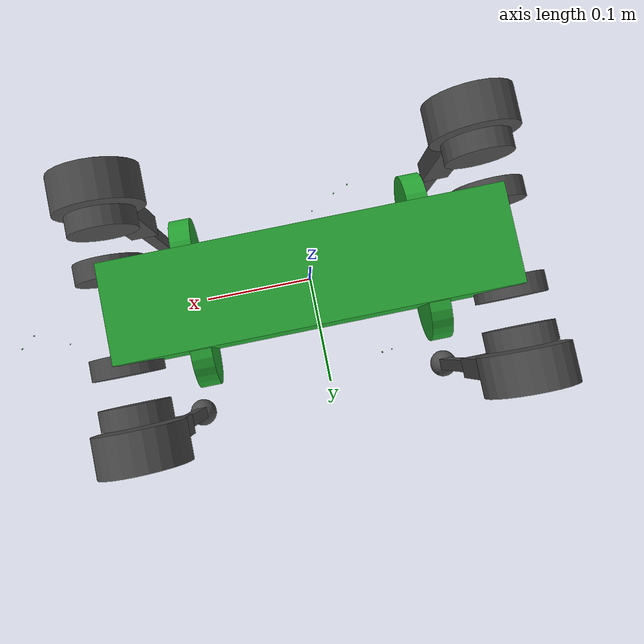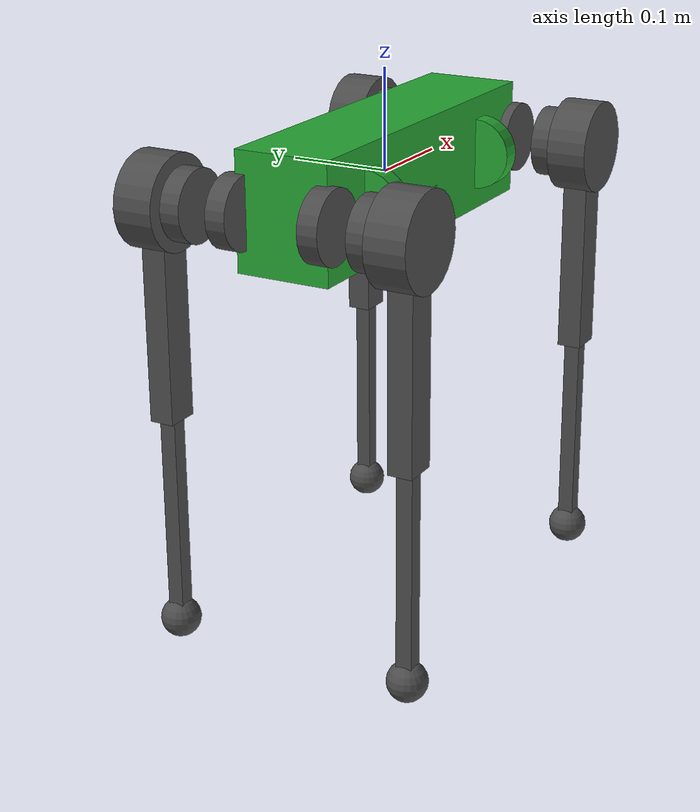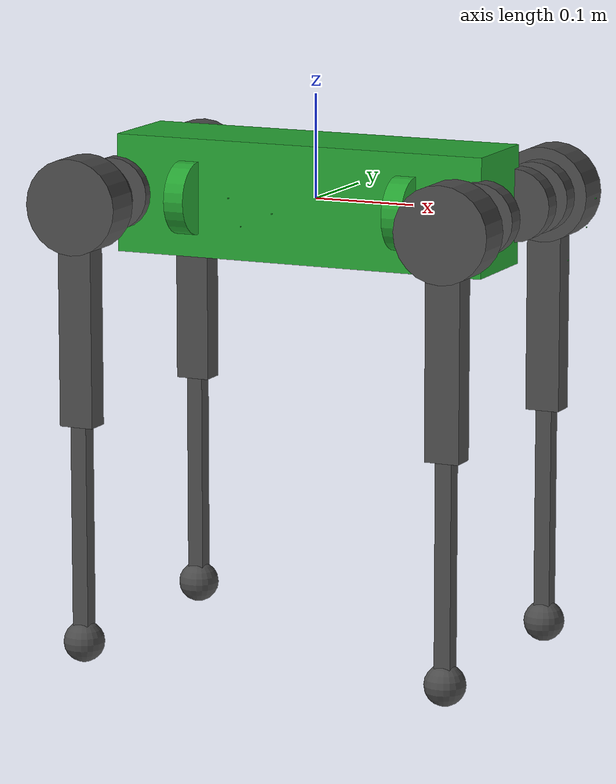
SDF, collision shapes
<sdf version='1.7'>
  <model name='go1'>
    <link name='base'>
      <inertial>
        <pose>0.020866 0.00186 -0.000469 0 -0 0</pose>
        <mass>5.56108</mass>
        <inertia>
          <ixx>0.0181527</ixx>
          <ixy>-0.000247078</ixy>
          <ixz>-0.000291004</ixz>
          <iyy>0.0680032</iyy>
          <iyz>-4.19233e-05</iyz>
          <izz>0.0774325</izz>
        </inertia>
      </inertial>
      <collision name='base_fixed_joint_lump__trunk_collision'>
        <pose>0 0 0 0 -0 0</pose>
        <geometry>
          <box>
            <size>0.3762 0.0935 0.114</size>
          </box>
        </geometry>
        <surface>
          <contact>
            <ode>
              <kp>1e+06</kp>
              <kd>1</kd>
            </ode>
          </contact>
          <friction>
            <ode>
              <mu>0.2</mu>
              <mu2>0.2</mu2>
            </ode>
          </friction>
        </surface>
      </collision>
      <collision name='base_fixed_joint_lump__FL_hip_rotor_collision_1'>
        <pose>0.11215 0.04675 0 0 1.5708 0</pose>
        <geometry>
          <cylinder>
            <length>0.02</length>
            <radius>0.035</radius>
          </cylinder>
        </geometry>
      </collision>
      <collision name='base_fixed_joint_lump__FR_hip_rotor_collision_2'>
        <pose>0.11215 -0.04675 0 0 1.5708 0</pose>
        <geometry>
          <cylinder>
            <length>0.02</length>
            <radius>0.035</radius>
          </cylinder>
        </geometry>
      </collision>
      <collision name='base_fixed_joint_lump__RL_hip_rotor_collision_3'>
        <pose>-0.11215 0.04675 0 0 1.5708 0</pose>
        <geometry>
          <cylinder>
            <length>0.02</length>
            <radius>0.035</radius>
          </cylinder>
        </geometry>
      </collision>
      <collision name='base_fixed_joint_lump__RR_hip_rotor_collision_4'>
        <pose>-0.11215 -0.04675 0 0 1.5708 0</pose>
        <geometry>
          <cylinder>
            <length>0.02</length>
            <radius>0.035</radius>
          </cylinder>
        </geometry>
      </collision>
      <collision name='base_fixed_joint_lump__camera_chin_collision_5'>
        <pose>0.2522 0.0125 -0.0436 3.14159 1.5708 0</pose>
        <geometry>
          <box>
            <size>0.001 0.001 0.001</size>
          </box>
        </geometry>
        <surface>
          <contact>
            <ode/>
          </contact>
          <friction>
            <ode/>
          </friction>
        </surface>
      </collision>
      <collision name='base_fixed_joint_lump__camera_face_collision_6'>
        <pose>0.2785 0.0125 0.0167 3.14159 -0 0</pose>
        <geometry>
          <box>
            <size>0.001 0.001 0.001</size>
          </box>
        </geometry>
        <surface>
          <contact>
            <ode/>
          </contact>
          <friction>
            <ode/>
          </friction>
        </surface>
      </collision>
      <collision name='base_fixed_joint_lump__camera_left_collision_7'>
        <pose>-0.066 0.082 -0.0176 3.14159 0.2618 1.5708</pose>
        <geometry>
          <box>
            <size>0.001 0.001 0.001</size>
          </box>
        </geometry>
        <surface>
          <contact>
            <ode/>
          </contact>
          <friction>
            <ode/>
          </friction>
        </surface>
      </collision>
      <collision name='base_fixed_joint_lump__camera_rearDown_collision_8'>
        <pose>-0.0825 0.0125 -0.04365 3.14159 1.5708 0</pose>
        <geometry>
          <box>
            <size>0.001 0.001 0.001</size>
          </box>
        </geometry>
        <surface>
          <contact>
            <ode/>
          </contact>
          <friction>
            <ode/>
          </friction>
        </surface>
      </collision>
      <collision name='base_fixed_joint_lump__camera_right_collision_9'>
        <pose>-0.041 -0.082 -0.0176 3.14159 0.2618 -1.5708</pose>
        <geometry>
          <box>
            <size>0.001 0.001 0.001</size>
          </box>
        </geometry>
        <surface>
          <contact>
            <ode/>
          </contact>
          <friction>
            <ode/>
          </friction>
        </surface>
      </collision>
      <collision name='base_fixed_joint_lump__imu_link_collision_10'>
        <pose>-0.01592 -0.06659 -0.00617 0 -0 0</pose>
        <geometry>
          <box>
            <size>0.001 0.001 0.001</size>
          </box>
        </geometry>
        <surface>
          <contact>
            <ode/>
          </contact>
          <friction>
            <ode>
              <mu>0.2</mu>
              <mu2>0.2</mu2>
            </ode>
          </friction>
        </surface>
      </collision>
      <collision name='base_fixed_joint_lump__ultraSound_face_collision_11'>
        <pose>0.2747 0 -0.0088 0 -0 0</pose>
        <geometry>
          <box>
            <size>0.001 0.001 0.001</size>
          </box>
        </geometry>
      </collision>
      <collision name='base_fixed_joint_lump__ultraSound_left_collision_12'>
        <pose>-0.0535 0.0826 0.00868 0 0.2618 1.5708</pose>
        <geometry>
          <box>
            <size>0.001 0.001 0.001</size>
          </box>
        </geometry>
      </collision>
      <collision name='base_fixed_joint_lump__ultraSound_right_collision_13'>
        <pose>-0.0535 -0.0826 0.00868 0 0.2618 -1.5708</pose>
        <geometry>
          <box>
            <size>0.001 0.001 0.001</size>
          </box>
        </geometry>
      </collision>
      <visual name='base_visual'>
        <pose>0 0 0 0 -0 0</pose>
        <geometry>
          <box>
            <size>0.001 0.001 0.001</size>
          </box>
        </geometry>
        <material>
          <script>
            <name>Gazebo/Green</name>
            <uri>file://media/materials/scripts/gazebo.material</uri>
          </script>
        </material>
      </visual>
      <visual name='base_fixed_joint_lump__trunk_visual_1'>
        <pose>0 0 0 0 -0 0</pose>
        <geometry>
          <mesh>
            <scale>1 1 1</scale>
            <uri>model://go1_description/meshes/trunk.dae</uri>
          </mesh>
        </geometry>
      </visual>
      <visual name='base_fixed_joint_lump__FL_hip_rotor_visual_2'>
        <pose>0.11215 0.04675 0 0 1.5708 0</pose>
        <geometry>
          <cylinder>
            <length>0.02</length>
            <radius>0.035</radius>
          </cylinder>
        </geometry>
      </visual>
      <visual name='base_fixed_joint_lump__FR_hip_rotor_visual_3'>
        <pose>0.11215 -0.04675 0 0 1.5708 0</pose>
        <geometry>
          <cylinder>
            <length>0.02</length>
            <radius>0.035</radius>
          </cylinder>
        </geometry>
      </visual>
      <visual name='base_fixed_joint_lump__RL_hip_rotor_visual_4'>
        <pose>-0.11215 0.04675 0 0 1.5708 0</pose>
        <geometry>
          <cylinder>
            <length>0.02</length>
            <radius>0.035</radius>
          </cylinder>
        </geometry>
      </visual>
      <visual name='base_fixed_joint_lump__RR_hip_rotor_visual_5'>
        <pose>-0.11215 -0.04675 0 0 1.5708 0</pose>
        <geometry>
          <cylinder>
            <length>0.02</length>
            <radius>0.035</radius>
          </cylinder>
        </geometry>
      </visual>
      <visual name='base_fixed_joint_lump__camera_chin_visual_6'>
        <pose>0.2522 0.0125 -0.0436 3.14159 1.5708 0</pose>
        <geometry>
          <mesh>
            <scale>1 1 1</scale>
            <uri>model://go1_description/meshes/depthCamera.dae</uri>
          </mesh>
        </geometry>
      </visual>
      <visual name='base_fixed_joint_lump__camera_face_visual_7'>
        <pose>0.2785 0.0125 0.0167 3.14159 -0 0</pose>
        <geometry>
          <mesh>
            <scale>1 1 1</scale>
            <uri>model://go1_description/meshes/depthCamera.dae</uri>
          </mesh>
        </geometry>
      </visual>
      <visual name='base_fixed_joint_lump__camera_left_visual_8'>
        <pose>-0.066 0.082 -0.0176 3.14159 0.2618 1.5708</pose>
        <geometry>
          <mesh>
            <scale>1 1 1</scale>
            <uri>model://go1_description/meshes/depthCamera.dae</uri>
          </mesh>
        </geometry>
      </visual>
      <visual name='base_fixed_joint_lump__camera_rearDown_visual_9'>
        <pose>-0.0825 0.0125 -0.04365 3.14159 1.5708 0</pose>
        <geometry>
          <mesh>
            <scale>1 1 1</scale>
            <uri>model://go1_description/meshes/depthCamera.dae</uri>
          </mesh>
        </geometry>
      </visual>
      <visual name='base_fixed_joint_lump__camera_right_visual_10'>
        <pose>-0.041 -0.082 -0.0176 3.14159 0.2618 -1.5708</pose>
        <geometry>
          <mesh>
            <scale>1 1 1</scale>
            <uri>model://go1_description/meshes/depthCamera.dae</uri>
          </mesh>
        </geometry>
      </visual>
      <visual name='base_fixed_joint_lump__imu_link_visual_11'>
        <pose>-0.01592 -0.06659 -0.00617 0 -0 0</pose>
        <geometry>
          <box>
            <size>0.001 0.001 0.001</size>
          </box>
        </geometry>
        <material>
          <script>
            <name>Gazebo/Red</name>
            <uri>file://media/materials/scripts/gazebo.material</uri>
          </script>
        </material>
      </visual>
      <visual name='base_fixed_joint_lump__ultraSound_face_visual_12'>
        <pose>0.2747 0 -0.0088 0 -0 0</pose>
        <geometry>
          <mesh>
            <scale>1 1 1</scale>
            <uri>model://go1_description/meshes/ultraSound.dae</uri>
          </mesh>
        </geometry>
      </visual>
      <visual name='base_fixed_joint_lump__ultraSound_left_visual_13'>
        <pose>-0.0535 0.0826 0.00868 0 0.2618 1.5708</pose>
        <geometry>
          <mesh>
            <scale>1 1 1</scale>
            <uri>model://go1_description/meshes/ultraSound.dae</uri>
          </mesh>
        </geometry>
      </visual>
      <visual name='base_fixed_joint_lump__ultraSound_right_visual_14'>
        <pose>-0.0535 -0.0826 0.00868 0 0.2618 -1.5708</pose>
        <geometry>
          <mesh>
            <scale>1 1 1</scale>
            <uri>model://go1_description/meshes/ultraSound.dae</uri>
          </mesh>
        </geometry>
      </visual>
      <gravity>1</gravity>
      <sensor name='camera_chin_camera' type='depth'>
        <update_rate>16</update_rate>
        <camera>
          <horizontal_fov>2.094</horizontal_fov>
          <image>
            <width>928</width>
            <height>800</height>
            <format>R8G8B8</format>
          </image>
          <clip>
            <near>0.1</near>
            <far>5</far>
          </clip>
        </camera>
        <plugin name='camera_chin_controller' filename='libgazebo_ros_openni_kinect.so'>
          <baseline>0.025</baseline>
          <alwaysOn>1</alwaysOn>
          <updateRate>0.0</updateRate>
          <cameraName>camera_chin_ir</cameraName>
          <imageTopicName>/camera_chin/color/image_raw</imageTopicName>
          <cameraInfoTopicName>/camera_chin/color/camera_info</cameraInfoTopicName>
          <depthImageTopicName>/camera_chin/depth/image_raw</depthImageTopicName>
          <depthImageInfoTopicName>/camera_chin/depth/camera_info</depthImageInfoTopicName>
          <pointCloudTopicName>/cam2/point_cloud_chin</pointCloudTopicName>
          <frameName>camera_optical_chin</frameName>
          <pointCloudCutoff>0.1</pointCloudCutoff>
          <pointCloudCutoffMax>1.5</pointCloudCutoffMax>
          <distortionK1>0.0</distortionK1>
          <distortionK2>0.0</distortionK2>
          <distortionK3>0.0</distortionK3>
          <distortionT1>0.0</distortionT1>
          <distortionT2>0.0</distortionT2>
          <CxPrime>0</CxPrime>
          <Cx>0.0045</Cx>
          <Cy>0.0039</Cy>
          <focalLength>0</focalLength>
          <hackBaseline>0</hackBaseline>
        </plugin>
        <pose>0.2522 0.0125 -0.0436 3.14159 1.57079 3e-06</pose>
      </sensor>
      <sensor name='camera_face_camera' type='depth'>
        <update_rate>16</update_rate>
        <camera>
          <horizontal_fov>2.094</horizontal_fov>
          <image>
            <width>928</width>
            <height>800</height>
            <format>R8G8B8</format>
          </image>
          <clip>
            <near>0.1</near>
            <far>5</far>
          </clip>
        </camera>
        <plugin name='camera_face_controller' filename='libgazebo_ros_openni_kinect.so'>
          <baseline>0.025</baseline>
          <alwaysOn>1</alwaysOn>
          <updateRate>0.0</updateRate>
          <cameraName>camera_face_ir</cameraName>
          <imageTopicName>/camera_face/color/image_raw</imageTopicName>
          <cameraInfoTopicName>/camera_face/color/camera_info</cameraInfoTopicName>
          <depthImageTopicName>/camera_face/depth/image_raw</depthImageTopicName>
          <depthImageInfoTopicName>/camera_face/depth/camera_info</depthImageInfoTopicName>
          <pointCloudTopicName>/cam1/point_cloud_face</pointCloudTopicName>
          <frameName>camera_optical_face</frameName>
          <pointCloudCutoff>0.1</pointCloudCutoff>
          <pointCloudCutoffMax>1.5</pointCloudCutoffMax>
          <distortionK1>0.0</distortionK1>
          <distortionK2>0.0</distortionK2>
          <distortionK3>0.0</distortionK3>
          <distortionT1>0.0</distortionT1>
          <distortionT2>0.0</distortionT2>
          <CxPrime>0</CxPrime>
          <Cx>0.0045</Cx>
          <Cy>0.0039</Cy>
          <focalLength>0</focalLength>
          <hackBaseline>0</hackBaseline>
        </plugin>
        <pose>0.2785 0.0125 0.0167 3.14159 -0 0</pose>
      </sensor>
      <sensor name='camera_left_camera' type='depth'>
        <update_rate>16</update_rate>
        <camera>
          <horizontal_fov>2.094</horizontal_fov>
          <image>
            <width>928</width>
            <height>800</height>
            <format>R8G8B8</format>
          </image>
          <clip>
            <near>0.1</near>
            <far>5</far>
          </clip>
        </camera>
        <plugin name='camera_left_controller' filename='libgazebo_ros_openni_kinect.so'>
          <baseline>0.025</baseline>
          <alwaysOn>1</alwaysOn>
          <updateRate>0.0</updateRate>
          <cameraName>camera_left_ir</cameraName>
          <imageTopicName>/camera_left/color/image_raw</imageTopicName>
          <cameraInfoTopicName>/camera_left/color/camera_info</cameraInfoTopicName>
          <depthImageTopicName>/camera_left/depth/image_raw</depthImageTopicName>
          <depthImageInfoTopicName>/camera_left/depth/camera_info</depthImageInfoTopicName>
          <pointCloudTopicName>/cam3/point_cloud_left</pointCloudTopicName>
          <frameName>camera_optical_left</frameName>
          <pointCloudCutoff>0.1</pointCloudCutoff>
          <pointCloudCutoffMax>1.5</pointCloudCutoffMax>
          <distortionK1>0.0</distortionK1>
          <distortionK2>0.0</distortionK2>
          <distortionK3>0.0</distortionK3>
          <distortionT1>0.0</distortionT1>
          <distortionT2>0.0</distortionT2>
          <CxPrime>0</CxPrime>
          <Cx>0.0045</Cx>
          <Cy>0.0039</Cy>
          <focalLength>0</focalLength>
          <hackBaseline>0</hackBaseline>
        </plugin>
        <pose>-0.066 0.082 -0.0176 3.14159 0.2618 1.5708</pose>
      </sensor>
      <sensor name='camera_rearDown_camera' type='depth'>
        <update_rate>16</update_rate>
        <camera>
          <horizontal_fov>2.094</horizontal_fov>
          <image>
            <width>928</width>
            <height>800</height>
            <format>R8G8B8</format>
          </image>
          <clip>
            <near>0.1</near>
            <far>5</far>
          </clip>
        </camera>
        <plugin name='camera_rearDown_controller' filename='libgazebo_ros_openni_kinect.so'>
          <baseline>0.025</baseline>
          <alwaysOn>1</alwaysOn>
          <updateRate>0.0</updateRate>
          <cameraName>camera_rearDown_ir</cameraName>
          <imageTopicName>/camera_rearDown/color/image_raw</imageTopicName>
          <cameraInfoTopicName>/camera_rearDown/color/camera_info</cameraInfoTopicName>
          <depthImageTopicName>/camera_rearDown/depth/image_raw</depthImageTopicName>
          <depthImageInfoTopicName>/camera_rearDown/depth/camera_info</depthImageInfoTopicName>
          <pointCloudTopicName>/cam5/point_cloud_rearDown</pointCloudTopicName>
          <frameName>camera_optical_rearDown</frameName>
          <pointCloudCutoff>0.1</pointCloudCutoff>
          <pointCloudCutoffMax>1.5</pointCloudCutoffMax>
          <distortionK1>0.0</distortionK1>
          <distortionK2>0.0</distortionK2>
          <distortionK3>0.0</distortionK3>
          <distortionT1>0.0</distortionT1>
          <distortionT2>0.0</distortionT2>
          <CxPrime>0</CxPrime>
          <Cx>0.0045</Cx>
          <Cy>0.0039</Cy>
          <focalLength>0</focalLength>
          <hackBaseline>0</hackBaseline>
        </plugin>
        <pose>-0.0825 0.0125 -0.04365 3.14159 1.57079 3e-06</pose>
      </sensor>
      <sensor name='camera_right_camera' type='depth'>
        <update_rate>16</update_rate>
        <camera>
          <horizontal_fov>2.094</horizontal_fov>
          <image>
            <width>928</width>
            <height>800</height>
            <format>R8G8B8</format>
          </image>
          <clip>
            <near>0.1</near>
            <far>5</far>
          </clip>
        </camera>
        <plugin name='camera_right_controller' filename='libgazebo_ros_openni_kinect.so'>
          <baseline>0.025</baseline>
          <alwaysOn>1</alwaysOn>
          <updateRate>0.0</updateRate>
          <cameraName>camera_right_ir</cameraName>
          <imageTopicName>/camera_right/color/image_raw</imageTopicName>
          <cameraInfoTopicName>/camera_right/color/camera_info</cameraInfoTopicName>
          <depthImageTopicName>/camera_right/depth/image_raw</depthImageTopicName>
          <depthImageInfoTopicName>/camera_right/depth/camera_info</depthImageInfoTopicName>
          <pointCloudTopicName>/cam4/point_cloud_right</pointCloudTopicName>
          <frameName>camera_optical_right</frameName>
          <pointCloudCutoff>0.1</pointCloudCutoff>
          <pointCloudCutoffMax>1.5</pointCloudCutoffMax>
          <distortionK1>0.0</distortionK1>
          <distortionK2>0.0</distortionK2>
          <distortionK3>0.0</distortionK3>
          <distortionT1>0.0</distortionT1>
          <distortionT2>0.0</distortionT2>
          <CxPrime>0</CxPrime>
          <Cx>0.0045</Cx>
          <Cy>0.0039</Cy>
          <focalLength>0</focalLength>
          <hackBaseline>0</hackBaseline>
        </plugin>
        <pose>-0.041 -0.082 -0.0176 3.14159 0.2618 -1.5708</pose>
      </sensor>
      <gravity>1</gravity>
      <sensor name='imu_sensor' type='imu'>
        <always_on>1</always_on>
        <update_rate>1000</update_rate>
        <visualize>1</visualize>
        <topic>__default_topic__</topic>
        <plugin name='imu_plugin' filename='libgazebo_ros_imu_sensor.so'>
          <topicName>trunk_imu</topicName>
          <bodyName>imu_link</bodyName>
          <updateRateHZ>1000.0</updateRateHZ>
          <gaussianNoise>0.0</gaussianNoise>
          <xyzOffset>0 0 0</xyzOffset>
          <rpyOffset>0 0 0</rpyOffset>
          <frameName>imu_link</frameName>
        </plugin>
        <pose>-0.01592 -0.06659 -0.00617 0 -0 0</pose>
      </sensor>
    </link>
    <joint name='FL_hip_joint' type='revolute'>
      <pose relative_to='base'>0.1881 0.04675 0 0 -0 0</pose>
      <parent>base</parent>
      <child>FL_hip</child>
      <axis>
        <xyz>1 0 0</xyz>
        <limit>
          <lower>-0.863</lower>
          <upper>0.863</upper>
          <effort>23.7</effort>
          <velocity>30.1</velocity>
        </limit>
        <dynamics>
          <damping>0.01</damping>
          <friction>0.2</friction>
          <spring_reference>0</spring_reference>
          <spring_stiffness>0</spring_stiffness>
        </dynamics>
      </axis>
    </joint>
    <link name='FL_hip'>
      <pose relative_to='FL_hip_joint'>0 0 0 0 -0 0</pose>
      <inertial>
        <pose>-0.004917 -0.007626 -8.9e-05 0 -0 0</pose>
        <mass>0.68</mass>
        <inertia>
          <ixx>0.00039938</ixx>
          <ixy>-1.45901e-05</ixy>
          <ixz>1.2461e-06</ixz>
          <iyy>0.000733419</iyy>
          <iyz>1.57533e-06</iyz>
          <izz>0.000468422</izz>
        </inertia>
      </inertial>
      <collision name='FL_hip_collision'>
        <pose>0 0.08 0 1.5708 -0 0</pose>
        <geometry>
          <cylinder>
            <length>0.04</length>
            <radius>0.046</radius>
          </cylinder>
        </geometry>
        <surface>
          <contact>
            <ode/>
          </contact>
          <friction>
            <ode>
              <mu>0.2</mu>
              <mu2>0.2</mu2>
            </ode>
          </friction>
        </surface>
      </collision>
      <collision name='FL_hip_fixed_joint_lump__FL_thigh_rotor_collision_1'>
        <pose>0 -0.00015 0 1.5708 -0 0</pose>
        <geometry>
          <cylinder>
            <length>0.02</length>
            <radius>0.035</radius>
          </cylinder>
        </geometry>
      </collision>
      <visual name='FL_hip_visual'>
        <pose>0 0 0 0 -0 0</pose>
        <geometry>
          <mesh>
            <scale>1 1 1</scale>
            <uri>model://go1_description/meshes/hip.dae</uri>
          </mesh>
        </geometry>
        <material>
          <script>
            <name>Gazebo/DarkGrey</name>
            <uri>file://media/materials/scripts/gazebo.material</uri>
          </script>
        </material>
      </visual>
      <visual name='FL_hip_fixed_joint_lump__FL_thigh_rotor_visual_1'>
        <pose>0 -0.00015 0 1.5708 -0 0</pose>
        <geometry>
          <cylinder>
            <length>0.02</length>
            <radius>0.035</radius>
          </cylinder>
        </geometry>
      </visual>
    </link>
    <joint name='FL_thigh_joint' type='revolute'>
      <pose relative_to='FL_hip'>0 0.08 0 0 -0 0</pose>
      <parent>FL_hip</parent>
      <child>FL_thigh</child>
      <axis>
        <xyz>0 1 0</xyz>
        <limit>
          <lower>-0.686</lower>
          <upper>4.501</upper>
          <effort>23.7</effort>
          <velocity>30.1</velocity>
        </limit>
        <dynamics>
          <damping>0.01</damping>
          <friction>0.2</friction>
          <spring_reference>0</spring_reference>
          <spring_stiffness>0</spring_stiffness>
        </dynamics>
      </axis>
    </joint>
    <link name='FL_thigh'>
      <pose relative_to='FL_thigh_joint'>0 0 0 0 -0 0</pose>
      <inertial>
        <pose>-0.003047 -0.019315 -0.0305 0 -0 0</pose>
        <mass>1.009</mass>
        <inertia>
          <ixx>0.0045988</ixx>
          <ixy>6.13739e-05</ixy>
          <ixz>-0.000227529</ixz>
          <iyy>0.00468922</iyy>
          <iyz>0.000610808</iyz>
          <izz>0.000817448</izz>
        </inertia>
      </inertial>
      <collision name='FL_thigh_collision'>
        <pose>0 0 -0.1065 0 1.5708 0</pose>
        <geometry>
          <box>
            <size>0.213 0.0245 0.034</size>
          </box>
        </geometry>
        <surface>
          <contact>
            <ode>
              <kp>1e+06</kp>
              <kd>1</kd>
            </ode>
          </contact>
          <friction>
            <ode>
              <mu>0.2</mu>
              <mu2>0.2</mu2>
            </ode>
          </friction>
        </surface>
      </collision>
      <collision name='FL_thigh_fixed_joint_lump__FL_calf_rotor_collision_1'>
        <pose>0 -0.03235 0 1.5708 -0 0</pose>
        <geometry>
          <cylinder>
            <length>0.02</length>
            <radius>0.035</radius>
          </cylinder>
        </geometry>
      </collision>
      <visual name='FL_thigh_visual'>
        <pose>0 0 0 0 -0 0</pose>
        <geometry>
          <mesh>
            <scale>1 1 1</scale>
            <uri>model://go1_description/meshes/thigh.dae</uri>
          </mesh>
        </geometry>
        <material>
          <script>
            <name>Gazebo/DarkGrey</name>
            <uri>file://media/materials/scripts/gazebo.material</uri>
          </script>
        </material>
      </visual>
      <visual name='FL_thigh_fixed_joint_lump__FL_calf_rotor_visual_1'>
        <pose>0 -0.03235 0 1.5708 -0 0</pose>
        <geometry>
          <cylinder>
            <length>0.02</length>
            <radius>0.035</radius>
          </cylinder>
        </geometry>
      </visual>
      <self_collide>1</self_collide>
    </link>
    <joint name='FL_calf_joint' type='revolute'>
      <pose relative_to='FL_thigh'>0 0 -0.213 0 -0 0</pose>
      <parent>FL_thigh</parent>
      <child>FL_calf</child>
      <axis>
        <xyz>0 1 0</xyz>
        <limit>
          <lower>-2.818</lower>
          <upper>-0.888</upper>
          <effort>35.55</effort>
          <velocity>20.06</velocity>
        </limit>
        <dynamics>
          <damping>0.01</damping>
          <friction>0.2</friction>
          <spring_reference>0</spring_reference>
          <spring_stiffness>0</spring_stiffness>
        </dynamics>
      </axis>
    </joint>
    <link name='FL_calf'>
      <pose relative_to='FL_calf_joint'>0 0 0 0 -0 0</pose>
      <inertial>
        <pose>0.004299 0.000977 -0.146197 0 -0 0</pose>
        <mass>0.195862</mass>
        <inertia>
          <ixx>0.00148448</ixx>
          <ixy>-6.18827e-07</ixy>
          <ixz>-1.77209e-05</ixz>
          <iyy>0.00149764</iyy>
          <iyz>-3.56626e-06</iyz>
          <izz>3.60683e-05</izz>
        </inertia>
      </inertial>
      <collision name='FL_calf_collision'>
        <pose>0 0 -0.1065 0 1.5708 0</pose>
        <geometry>
          <box>
            <size>0.213 0.016 0.016</size>
          </box>
        </geometry>
        <surface>
          <contact>
            <ode/>
          </contact>
          <friction>
            <ode>
              <mu>0.2</mu>
              <mu2>0.2</mu2>
            </ode>
          </friction>
        </surface>
      </collision>
      <collision name='FL_calf_fixed_joint_lump__FL_foot_collision_1'>
        <pose>0 0 -0.213 0 -0 0</pose>
        <geometry>
          <sphere>
            <radius>0.02</radius>
          </sphere>
        </geometry>
        <surface>
          <contact>
            <ode>
              <kp>1e+06</kp>
              <kd>1</kd>
            </ode>
          </contact>
          <friction>
            <ode>
              <mu>0.6</mu>
              <mu2>0.6</mu2>
            </ode>
          </friction>
        </surface>
      </collision>
      <visual name='FL_calf_visual'>
        <pose>0 0 0 0 -0 0</pose>
        <geometry>
          <mesh>
            <scale>1 1 1</scale>
            <uri>model://go1_description/meshes/calf.dae</uri>
          </mesh>
        </geometry>
      </visual>
      <visual name='FL_calf_fixed_joint_lump__FL_foot_visual_1'>
        <pose>0 0 -0.213 0 -0 0</pose>
        <geometry>
          <sphere>
            <radius>0.01</radius>
          </sphere>
        </geometry>
        <plugin name='drawForcePlugin' filename='libunitreeDrawForcePlugin.so'>
          <topicName>FL_foot_contact</topicName>
        </plugin>
        <material>
          <script>
            <name>Gazebo/DarkGrey</name>
            <uri>file://media/materials/scripts/gazebo.material</uri>
          </script>
        </material>
      </visual>
      <sensor name='FL_foot_contact' type='contact'>
        <update_rate>100</update_rate>
        <plugin name='contactPlugin' filename='libunitreeFootContactPlugin.so'/>
        <contact>
          <collision>FL_calf_fixed_joint_lump__FL_foot_collision_1</collision>
          <topic>__default_topic__</topic>
        </contact>
      </sensor>
      <self_collide>1</self_collide>
      <self_collide>1</self_collide>
    </link>
    <joint name='FR_hip_joint' type='revolute'>
      <pose relative_to='base'>0.1881 -0.04675 0 0 -0 0</pose>
      <parent>base</parent>
      <child>FR_hip</child>
      <axis>
        <xyz>1 0 0</xyz>
        <limit>
          <lower>-0.863</lower>
          <upper>0.863</upper>
          <effort>23.7</effort>
          <velocity>30.1</velocity>
        </limit>
        <dynamics>
          <damping>0.01</damping>
          <friction>0.2</friction>
          <spring_reference>0</spring_reference>
          <spring_stiffness>0</spring_stiffness>
        </dynamics>
      </axis>
    </joint>
    <link name='FR_hip'>
      <pose relative_to='FR_hip_joint'>0 0 0 0 -0 0</pose>
      <inertial>
        <pose>-0.004917 0.007626 -8.9e-05 0 -0 0</pose>
        <mass>0.68</mass>
        <inertia>
          <ixx>0.00039938</ixx>
          <ixy>1.45901e-05</ixy>
          <ixz>1.2461e-06</ixz>
          <iyy>0.000733419</iyy>
          <iyz>-1.57533e-06</iyz>
          <izz>0.000468422</izz>
        </inertia>
      </inertial>
      <collision name='FR_hip_collision'>
        <pose>0 -0.08 0 1.5708 -0 0</pose>
        <geometry>
          <cylinder>
            <length>0.04</length>
            <radius>0.046</radius>
          </cylinder>
        </geometry>
        <surface>
          <contact>
            <ode/>
          </contact>
          <friction>
            <ode>
              <mu>0.2</mu>
              <mu2>0.2</mu2>
            </ode>
          </friction>
        </surface>
      </collision>
      <collision name='FR_hip_fixed_joint_lump__FR_thigh_rotor_collision_1'>
        <pose>0 0.00015 0 1.5708 -0 0</pose>
        <geometry>
          <cylinder>
            <length>0.02</length>
            <radius>0.035</radius>
          </cylinder>
        </geometry>
      </collision>
      <visual name='FR_hip_visual'>
        <pose>0 0 0 3.14159 -0 0</pose>
        <geometry>
          <mesh>
            <scale>1 1 1</scale>
            <uri>model://go1_description/meshes/hip.dae</uri>
          </mesh>
        </geometry>
        <material>
          <script>
            <name>Gazebo/DarkGrey</name>
            <uri>file://media/materials/scripts/gazebo.material</uri>
          </script>
        </material>
      </visual>
      <visual name='FR_hip_fixed_joint_lump__FR_thigh_rotor_visual_1'>
        <pose>0 0.00015 0 1.5708 -0 0</pose>
        <geometry>
          <cylinder>
            <length>0.02</length>
            <radius>0.035</radius>
          </cylinder>
        </geometry>
      </visual>
    </link>
    <joint name='FR_thigh_joint' type='revolute'>
      <pose relative_to='FR_hip'>0 -0.08 0 0 -0 0</pose>
      <parent>FR_hip</parent>
      <child>FR_thigh</child>
      <axis>
        <xyz>0 1 0</xyz>
        <limit>
          <lower>-0.686</lower>
          <upper>4.501</upper>
          <effort>23.7</effort>
          <velocity>30.1</velocity>
        </limit>
        <dynamics>
          <damping>0.01</damping>
          <friction>0.2</friction>
          <spring_reference>0</spring_reference>
          <spring_stiffness>0</spring_stiffness>
        </dynamics>
      </axis>
    </joint>
    <link name='FR_thigh'>
      <pose relative_to='FR_thigh_joint'>0 0 0 0 -0 0</pose>
      <inertial>
        <pose>-0.003047 0.019315 -0.0305 0 -0 0</pose>
        <mass>1.009</mass>
        <inertia>
          <ixx>0.0045988</ixx>
          <ixy>-6.13739e-05</ixy>
          <ixz>-0.000227529</ixz>
          <iyy>0.00468922</iyy>
          <iyz>-0.000610808</iyz>
          <izz>0.000817448</izz>
        </inertia>
      </inertial>
      <collision name='FR_thigh_collision'>
        <pose>0 0 -0.1065 0 1.5708 0</pose>
        <geometry>
          <box>
            <size>0.213 0.0245 0.034</size>
          </box>
        </geometry>
        <surface>
          <contact>
            <ode>
              <kp>1e+06</kp>
              <kd>1</kd>
            </ode>
          </contact>
          <friction>
            <ode>
              <mu>0.2</mu>
              <mu2>0.2</mu2>
            </ode>
          </friction>
        </surface>
      </collision>
      <collision name='FR_thigh_fixed_joint_lump__FR_calf_rotor_collision_1'>
        <pose>0 0.03235 0 1.5708 -0 0</pose>
        <geometry>
          <cylinder>
            <length>0.02</length>
            <radius>0.035</radius>
          </cylinder>
        </geometry>
      </collision>
      <visual name='FR_thigh_visual'>
        <pose>0 0 0 0 -0 0</pose>
        <geometry>
          <mesh>
            <scale>1 1 1</scale>
            <uri>model://go1_description/meshes/thigh_mirror.dae</uri>
          </mesh>
        </geometry>
        <material>
          <script>
            <name>Gazebo/DarkGrey</name>
            <uri>file://media/materials/scripts/gazebo.material</uri>
          </script>
        </material>
      </visual>
      <visual name='FR_thigh_fixed_joint_lump__FR_calf_rotor_visual_1'>
        <pose>0 0.03235 0 1.5708 -0 0</pose>
        <geometry>
          <cylinder>
            <length>0.02</length>
            <radius>0.035</radius>
          </cylinder>
        </geometry>
      </visual>
      <self_collide>1</self_collide>
    </link>
    <joint name='FR_calf_joint' type='revolute'>
      <pose relative_to='FR_thigh'>0 0 -0.213 0 -0 0</pose>
      <parent>FR_thigh</parent>
      <child>FR_calf</child>
      <axis>
        <xyz>0 1 0</xyz>
        <limit>
          <lower>-2.818</lower>
          <upper>-0.888</upper>
          <effort>35.55</effort>
          <velocity>20.06</velocity>
        </limit>
        <dynamics>
          <damping>0.01</damping>
          <friction>0.2</friction>
          <spring_reference>0</spring_reference>
          <spring_stiffness>0</spring_stiffness>
        </dynamics>
      </axis>
    </joint>
    <link name='FR_calf'>
      <pose relative_to='FR_calf_joint'>0 0 0 0 -0 0</pose>
      <inertial>
        <pose>0.004299 0.000977 -0.146197 0 -0 0</pose>
        <mass>0.195862</mass>
        <inertia>
          <ixx>0.00148448</ixx>
          <ixy>-6.18827e-07</ixy>
          <ixz>-1.77209e-05</ixz>
          <iyy>0.00149764</iyy>
          <iyz>-3.56626e-06</iyz>
          <izz>3.60683e-05</izz>
        </inertia>
      </inertial>
      <collision name='FR_calf_collision'>
        <pose>0 0 -0.1065 0 1.5708 0</pose>
        <geometry>
          <box>
            <size>0.213 0.016 0.016</size>
          </box>
        </geometry>
        <surface>
          <contact>
            <ode/>
          </contact>
          <friction>
            <ode>
              <mu>0.2</mu>
              <mu2>0.2</mu2>
            </ode>
          </friction>
        </surface>
      </collision>
      <collision name='FR_calf_fixed_joint_lump__FR_foot_collision_1'>
        <pose>0 0 -0.213 0 -0 0</pose>
        <geometry>
          <sphere>
            <radius>0.02</radius>
          </sphere>
        </geometry>
        <surface>
          <contact>
            <ode>
              <kp>1e+06</kp>
              <kd>1</kd>
            </ode>
          </contact>
          <friction>
            <ode>
              <mu>0.6</mu>
              <mu2>0.6</mu2>
            </ode>
          </friction>
        </surface>
      </collision>
      <visual name='FR_calf_visual'>
        <pose>0 0 0 0 -0 0</pose>
        <geometry>
          <mesh>
            <scale>1 1 1</scale>
            <uri>model://go1_description/meshes/calf.dae</uri>
          </mesh>
        </geometry>
      </visual>
      <visual name='FR_calf_fixed_joint_lump__FR_foot_visual_1'>
        <pose>0 0 -0.213 0 -0 0</pose>
        <geometry>
          <sphere>
            <radius>0.01</radius>
          </sphere>
        </geometry>
        <plugin name='drawForcePlugin' filename='libunitreeDrawForcePlugin.so'>
          <topicName>FR_foot_contact</topicName>
        </plugin>
        <material>
          <script>
            <name>Gazebo/DarkGrey</name>
            <uri>file://media/materials/scripts/gazebo.material</uri>
          </script>
        </material>
      </visual>
      <sensor name='FR_foot_contact' type='contact'>
        <update_rate>100</update_rate>
        <plugin name='contactPlugin' filename='libunitreeFootContactPlugin.so'/>
        <contact>
          <collision>FR_calf_fixed_joint_lump__FR_foot_collision_1</collision>
          <topic>__default_topic__</topic>
        </contact>
      </sensor>
      <self_collide>1</self_collide>
      <self_collide>1</self_collide>
    </link>
    <joint name='RL_hip_joint' type='revolute'>
      <pose relative_to='base'>-0.1881 0.04675 0 0 -0 0</pose>
      <parent>base</parent>
      <child>RL_hip</child>
      <axis>
        <xyz>1 0 0</xyz>
        <limit>
          <lower>-0.863</lower>
          <upper>0.863</upper>
          <effort>23.7</effort>
          <velocity>30.1</velocity>
        </limit>
        <dynamics>
          <damping>0.01</damping>
          <friction>0.2</friction>
          <spring_reference>0</spring_reference>
          <spring_stiffness>0</spring_stiffness>
        </dynamics>
      </axis>
    </joint>
    <link name='RL_hip'>
      <pose relative_to='RL_hip_joint'>0 0 0 0 -0 0</pose>
      <inertial>
        <pose>0.004917 -0.007626 -8.9e-05 0 -0 0</pose>
        <mass>0.68</mass>
        <inertia>
          <ixx>0.00039938</ixx>
          <ixy>1.45901e-05</ixy>
          <ixz>-1.2461e-06</ixz>
          <iyy>0.000733419</iyy>
          <iyz>1.57533e-06</iyz>
          <izz>0.000468422</izz>
        </inertia>
      </inertial>
      <collision name='RL_hip_collision'>
        <pose>0 0.08 0 1.5708 -0 0</pose>
        <geometry>
          <cylinder>
            <length>0.04</length>
            <radius>0.046</radius>
          </cylinder>
        </geometry>
        <surface>
          <contact>
            <ode/>
          </contact>
          <friction>
            <ode>
              <mu>0.2</mu>
              <mu2>0.2</mu2>
            </ode>
          </friction>
        </surface>
      </collision>
      <collision name='RL_hip_fixed_joint_lump__RL_thigh_rotor_collision_1'>
        <pose>0 -0.00015 0 1.5708 -0 0</pose>
        <geometry>
          <cylinder>
            <length>0.02</length>
            <radius>0.035</radius>
          </cylinder>
        </geometry>
      </collision>
      <visual name='RL_hip_visual'>
        <pose>0 0 0 3.14159 0 3.14159</pose>
        <geometry>
          <mesh>
            <scale>1 1 1</scale>
            <uri>model://go1_description/meshes/hip.dae</uri>
          </mesh>
        </geometry>
        <material>
          <script>
            <name>Gazebo/DarkGrey</name>
            <uri>file://media/materials/scripts/gazebo.material</uri>
          </script>
        </material>
      </visual>
      <visual name='RL_hip_fixed_joint_lump__RL_thigh_rotor_visual_1'>
        <pose>0 -0.00015 0 1.5708 -0 0</pose>
        <geometry>
          <cylinder>
            <length>0.02</length>
            <radius>0.035</radius>
          </cylinder>
        </geometry>
      </visual>
    </link>
    <joint name='RL_thigh_joint' type='revolute'>
      <pose relative_to='RL_hip'>0 0.08 0 0 -0 0</pose>
      <parent>RL_hip</parent>
      <child>RL_thigh</child>
      <axis>
        <xyz>0 1 0</xyz>
        <limit>
          <lower>-0.686</lower>
          <upper>4.501</upper>
          <effort>23.7</effort>
          <velocity>30.1</velocity>
        </limit>
        <dynamics>
          <damping>0.01</damping>
          <friction>0.2</friction>
          <spring_reference>0</spring_reference>
          <spring_stiffness>0</spring_stiffness>
        </dynamics>
      </axis>
    </joint>
    <link name='RL_thigh'>
      <pose relative_to='RL_thigh_joint'>0 0 0 0 -0 0</pose>
      <inertial>
        <pose>-0.003047 -0.019315 -0.0305 0 -0 0</pose>
        <mass>1.009</mass>
        <inertia>
          <ixx>0.0045988</ixx>
          <ixy>6.13739e-05</ixy>
          <ixz>-0.000227529</ixz>
          <iyy>0.00468922</iyy>
          <iyz>0.000610808</iyz>
          <izz>0.000817448</izz>
        </inertia>
      </inertial>
      <collision name='RL_thigh_collision'>
        <pose>0 0 -0.1065 0 1.5708 0</pose>
        <geometry>
          <box>
            <size>0.213 0.0245 0.034</size>
          </box>
        </geometry>
        <surface>
          <contact>
            <ode>
              <kp>1e+06</kp>
              <kd>1</kd>
            </ode>
          </contact>
          <friction>
            <ode>
              <mu>0.2</mu>
              <mu2>0.2</mu2>
            </ode>
          </friction>
        </surface>
      </collision>
      <collision name='RL_thigh_fixed_joint_lump__RL_calf_rotor_collision_1'>
        <pose>0 -0.03235 0 1.5708 -0 0</pose>
        <geometry>
          <cylinder>
            <length>0.02</length>
            <radius>0.035</radius>
          </cylinder>
        </geometry>
      </collision>
      <visual name='RL_thigh_visual'>
        <pose>0 0 0 0 -0 0</pose>
        <geometry>
          <mesh>
            <scale>1 1 1</scale>
            <uri>model://go1_description/meshes/thigh.dae</uri>
          </mesh>
        </geometry>
        <material>
          <script>
            <name>Gazebo/DarkGrey</name>
            <uri>file://media/materials/scripts/gazebo.material</uri>
          </script>
        </material>
      </visual>
      <visual name='RL_thigh_fixed_joint_lump__RL_calf_rotor_visual_1'>
        <pose>0 -0.03235 0 1.5708 -0 0</pose>
        <geometry>
          <cylinder>
            <length>0.02</length>
            <radius>0.035</radius>
          </cylinder>
        </geometry>
      </visual>
      <self_collide>1</self_collide>
    </link>
    <joint name='RL_calf_joint' type='revolute'>
      <pose relative_to='RL_thigh'>0 0 -0.213 0 -0 0</pose>
      <parent>RL_thigh</parent>
      <child>RL_calf</child>
      <axis>
        <xyz>0 1 0</xyz>
        <limit>
          <lower>-2.818</lower>
          <upper>-0.888</upper>
          <effort>35.55</effort>
          <velocity>20.06</velocity>
        </limit>
        <dynamics>
          <damping>0.01</damping>
          <friction>0.2</friction>
          <spring_reference>0</spring_reference>
          <spring_stiffness>0</spring_stiffness>
        </dynamics>
      </axis>
    </joint>
    <link name='RL_calf'>
      <pose relative_to='RL_calf_joint'>0 0 0 0 -0 0</pose>
      <inertial>
        <pose>0.004299 0.000977 -0.146197 0 -0 0</pose>
        <mass>0.195862</mass>
        <inertia>
          <ixx>0.00148448</ixx>
          <ixy>-6.18827e-07</ixy>
          <ixz>-1.77209e-05</ixz>
          <iyy>0.00149764</iyy>
          <iyz>-3.56626e-06</iyz>
          <izz>3.60683e-05</izz>
        </inertia>
      </inertial>
      <collision name='RL_calf_collision'>
        <pose>0 0 -0.1065 0 1.5708 0</pose>
        <geometry>
          <box>
            <size>0.213 0.016 0.016</size>
          </box>
        </geometry>
        <surface>
          <contact>
            <ode/>
          </contact>
          <friction>
            <ode>
              <mu>0.2</mu>
              <mu2>0.2</mu2>
            </ode>
          </friction>
        </surface>
      </collision>
      <collision name='RL_calf_fixed_joint_lump__RL_foot_collision_1'>
        <pose>0 0 -0.213 0 -0 0</pose>
        <geometry>
          <sphere>
            <radius>0.02</radius>
          </sphere>
        </geometry>
        <surface>
          <contact>
            <ode>
              <kp>1e+06</kp>
              <kd>1</kd>
            </ode>
          </contact>
          <friction>
            <ode>
              <mu>0.6</mu>
              <mu2>0.6</mu2>
            </ode>
          </friction>
        </surface>
      </collision>
      <visual name='RL_calf_visual'>
        <pose>0 0 0 0 -0 0</pose>
        <geometry>
          <mesh>
            <scale>1 1 1</scale>
            <uri>model://go1_description/meshes/calf.dae</uri>
          </mesh>
        </geometry>
      </visual>
      <visual name='RL_calf_fixed_joint_lump__RL_foot_visual_1'>
        <pose>0 0 -0.213 0 -0 0</pose>
        <geometry>
          <sphere>
            <radius>0.01</radius>
          </sphere>
        </geometry>
        <plugin name='drawForcePlugin' filename='libunitreeDrawForcePlugin.so'>
          <topicName>RL_foot_contact</topicName>
        </plugin>
        <material>
          <script>
            <name>Gazebo/DarkGrey</name>
            <uri>file://media/materials/scripts/gazebo.material</uri>
          </script>
        </material>
      </visual>
      <sensor name='RL_foot_contact' type='contact'>
        <update_rate>100</update_rate>
        <plugin name='contactPlugin' filename='libunitreeFootContactPlugin.so'/>
        <contact>
          <collision>RL_calf_fixed_joint_lump__RL_foot_collision_1</collision>
          <topic>__default_topic__</topic>
        </contact>
      </sensor>
      <self_collide>1</self_collide>
      <self_collide>1</self_collide>
    </link>
    <joint name='RR_hip_joint' type='revolute'>
      <pose relative_to='base'>-0.1881 -0.04675 0 0 -0 0</pose>
      <parent>base</parent>
      <child>RR_hip</child>
      <axis>
        <xyz>1 0 0</xyz>
        <limit>
          <lower>-0.863</lower>
          <upper>0.863</upper>
          <effort>23.7</effort>
          <velocity>30.1</velocity>
        </limit>
        <dynamics>
          <damping>0.01</damping>
          <friction>0.2</friction>
          <spring_reference>0</spring_reference>
          <spring_stiffness>0</spring_stiffness>
        </dynamics>
      </axis>
    </joint>
    <link name='RR_hip'>
      <pose relative_to='RR_hip_joint'>0 0 0 0 -0 0</pose>
      <inertial>
        <pose>0.004917 0.007626 -8.9e-05 0 -0 0</pose>
        <mass>0.68</mass>
        <inertia>
          <ixx>0.00039938</ixx>
          <ixy>-1.45901e-05</ixy>
          <ixz>-1.2461e-06</ixz>
          <iyy>0.000733419</iyy>
          <iyz>-1.57533e-06</iyz>
          <izz>0.000468422</izz>
        </inertia>
      </inertial>
      <collision name='RR_hip_collision'>
        <pose>0 -0.08 0 1.5708 -0 0</pose>
        <geometry>
          <cylinder>
            <length>0.04</length>
            <radius>0.046</radius>
          </cylinder>
        </geometry>
        <surface>
          <contact>
            <ode/>
          </contact>
          <friction>
            <ode>
              <mu>0.2</mu>
              <mu2>0.2</mu2>
            </ode>
          </friction>
        </surface>
      </collision>
      <collision name='RR_hip_fixed_joint_lump__RR_thigh_rotor_collision_1'>
        <pose>0 0.00015 0 1.5708 -0 0</pose>
        <geometry>
          <cylinder>
            <length>0.02</length>
            <radius>0.035</radius>
          </cylinder>
        </geometry>
      </collision>
      <visual name='RR_hip_visual'>
        <pose>0 0 0 -0 0 3.14159</pose>
        <geometry>
          <mesh>
            <scale>1 1 1</scale>
            <uri>model://go1_description/meshes/hip.dae</uri>
          </mesh>
        </geometry>
        <material>
          <script>
            <name>Gazebo/DarkGrey</name>
            <uri>file://media/materials/scripts/gazebo.material</uri>
          </script>
        </material>
      </visual>
      <visual name='RR_hip_fixed_joint_lump__RR_thigh_rotor_visual_1'>
        <pose>0 0.00015 0 1.5708 -0 0</pose>
        <geometry>
          <cylinder>
            <length>0.02</length>
            <radius>0.035</radius>
          </cylinder>
        </geometry>
      </visual>
    </link>
    <joint name='RR_thigh_joint' type='revolute'>
      <pose relative_to='RR_hip'>0 -0.08 0 0 -0 0</pose>
      <parent>RR_hip</parent>
      <child>RR_thigh</child>
      <axis>
        <xyz>0 1 0</xyz>
        <limit>
          <lower>-0.686</lower>
          <upper>4.501</upper>
          <effort>23.7</effort>
          <velocity>30.1</velocity>
        </limit>
        <dynamics>
          <damping>0.01</damping>
          <friction>0.2</friction>
          <spring_reference>0</spring_reference>
          <spring_stiffness>0</spring_stiffness>
        </dynamics>
      </axis>
    </joint>
    <link name='RR_thigh'>
      <pose relative_to='RR_thigh_joint'>0 0 0 0 -0 0</pose>
      <inertial>
        <pose>-0.003047 0.019315 -0.0305 0 -0 0</pose>
        <mass>1.009</mass>
        <inertia>
          <ixx>0.0045988</ixx>
          <ixy>-6.13739e-05</ixy>
          <ixz>-0.000227529</ixz>
          <iyy>0.00468922</iyy>
          <iyz>-0.000610808</iyz>
          <izz>0.000817448</izz>
        </inertia>
      </inertial>
      <collision name='RR_thigh_collision'>
        <pose>0 0 -0.1065 0 1.5708 0</pose>
        <geometry>
          <box>
            <size>0.213 0.0245 0.034</size>
          </box>
        </geometry>
        <surface>
          <contact>
            <ode>
              <kp>1e+06</kp>
              <kd>1</kd>
            </ode>
          </contact>
          <friction>
            <ode>
              <mu>0.2</mu>
              <mu2>0.2</mu2>
            </ode>
          </friction>
        </surface>
      </collision>
      <collision name='RR_thigh_fixed_joint_lump__RR_calf_rotor_collision_1'>
        <pose>0 0.03235 0 1.5708 -0 0</pose>
        <geometry>
          <cylinder>
            <length>0.02</length>
            <radius>0.035</radius>
          </cylinder>
        </geometry>
      </collision>
      <visual name='RR_thigh_visual'>
        <pose>0 0 0 0 -0 0</pose>
        <geometry>
          <mesh>
            <scale>1 1 1</scale>
            <uri>model://go1_description/meshes/thigh_mirror.dae</uri>
          </mesh>
        </geometry>
        <material>
          <script>
            <name>Gazebo/DarkGrey</name>
            <uri>file://media/materials/scripts/gazebo.material</uri>
          </script>
        </material>
      </visual>
      <visual name='RR_thigh_fixed_joint_lump__RR_calf_rotor_visual_1'>
        <pose>0 0.03235 0 1.5708 -0 0</pose>
        <geometry>
          <cylinder>
            <length>0.02</length>
            <radius>0.035</radius>
          </cylinder>
        </geometry>
      </visual>
      <self_collide>1</self_collide>
    </link>
    <joint name='RR_calf_joint' type='revolute'>
      <pose relative_to='RR_thigh'>0 0 -0.213 0 -0 0</pose>
      <parent>RR_thigh</parent>
      <child>RR_calf</child>
      <axis>
        <xyz>0 1 0</xyz>
        <limit>
          <lower>-2.818</lower>
          <upper>-0.888</upper>
          <effort>35.55</effort>
          <velocity>20.06</velocity>
        </limit>
        <dynamics>
          <damping>0.01</damping>
          <friction>0.2</friction>
          <spring_reference>0</spring_reference>
          <spring_stiffness>0</spring_stiffness>
        </dynamics>
      </axis>
    </joint>
    <link name='RR_calf'>
      <pose relative_to='RR_calf_joint'>0 0 0 0 -0 0</pose>
      <inertial>
        <pose>0.004299 0.000977 -0.146197 0 -0 0</pose>
        <mass>0.195862</mass>
        <inertia>
          <ixx>0.00148448</ixx>
          <ixy>-6.18827e-07</ixy>
          <ixz>-1.77209e-05</ixz>
          <iyy>0.00149764</iyy>
          <iyz>-3.56626e-06</iyz>
          <izz>3.60683e-05</izz>
        </inertia>
      </inertial>
      <collision name='RR_calf_collision'>
        <pose>0 0 -0.1065 0 1.5708 0</pose>
        <geometry>
          <box>
            <size>0.213 0.016 0.016</size>
          </box>
        </geometry>
        <surface>
          <contact>
            <ode/>
          </contact>
          <friction>
            <ode>
              <mu>0.2</mu>
              <mu2>0.2</mu2>
            </ode>
          </friction>
        </surface>
      </collision>
      <collision name='RR_calf_fixed_joint_lump__RR_foot_collision_1'>
        <pose>0 0 -0.213 0 -0 0</pose>
        <geometry>
          <sphere>
            <radius>0.02</radius>
          </sphere>
        </geometry>
        <surface>
          <contact>
            <ode>
              <kp>1e+06</kp>
              <kd>1</kd>
            </ode>
          </contact>
          <friction>
            <ode>
              <mu>0.6</mu>
              <mu2>0.6</mu2>
            </ode>
          </friction>
        </surface>
      </collision>
      <visual name='RR_calf_visual'>
        <pose>0 0 0 0 -0 0</pose>
        <geometry>
          <mesh>
            <scale>1 1 1</scale>
            <uri>model://go1_description/meshes/calf.dae</uri>
          </mesh>
        </geometry>
      </visual>
      <visual name='RR_calf_fixed_joint_lump__RR_foot_visual_1'>
        <pose>0 0 -0.213 0 -0 0</pose>
        <geometry>
          <sphere>
            <radius>0.01</radius>
          </sphere>
        </geometry>
        <plugin name='drawForcePlugin' filename='libunitreeDrawForcePlugin.so'>
          <topicName>RR_foot_contact</topicName>
        </plugin>
        <material>
          <script>
            <name>Gazebo/DarkGrey</name>
            <uri>file://media/materials/scripts/gazebo.material</uri>
          </script>
        </material>
      </visual>
      <sensor name='RR_foot_contact' type='contact'>
        <update_rate>100</update_rate>
        <plugin name='contactPlugin' filename='libunitreeFootContactPlugin.so'/>
        <contact>
          <collision>RR_calf_fixed_joint_lump__RR_foot_collision_1</collision>
          <topic>__default_topic__</topic>
        </contact>
      </sensor>
      <self_collide>1</self_collide>
      <self_collide>1</self_collide>
    </link>
    <plugin name='gazebo_ros_control' filename='libgazebo_ros_control.so'>
      <robotNamespace>/go1_gazebo</robotNamespace>
      <robotSimType>gazebo_ros_control/DefaultRobotHWSim</robotSimType>
    </plugin>
    <plugin name='3dplot' filename='libLinkPlot3DPlugin.so'>
      <frequency>10</frequency>
      <plot>
        <link>base</link>
        <pose>0 0 0 0 0 0</pose>
        <material>Gazebo/Yellow</material>
      </plot>
    </plugin>
    <static>0</static>
    <plugin name='gazebo_ros_force' filename='libgazebo_ros_force.so'>
      <topicName>/apply_force/trunk</topicName>
      <bodyName>base</bodyName>
      <xyzOffset>0 0 0</xyzOffset>
      <rpyOffset>0 -0 0</rpyOffset>
    </plugin>
  </model>
</sdf>
